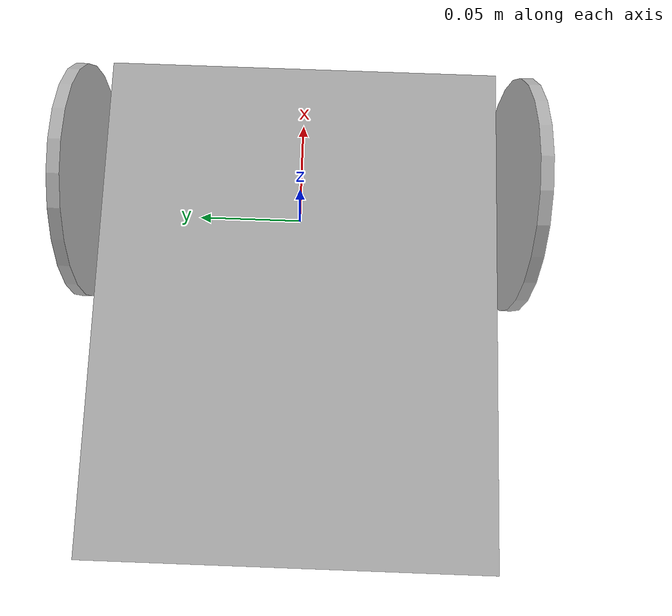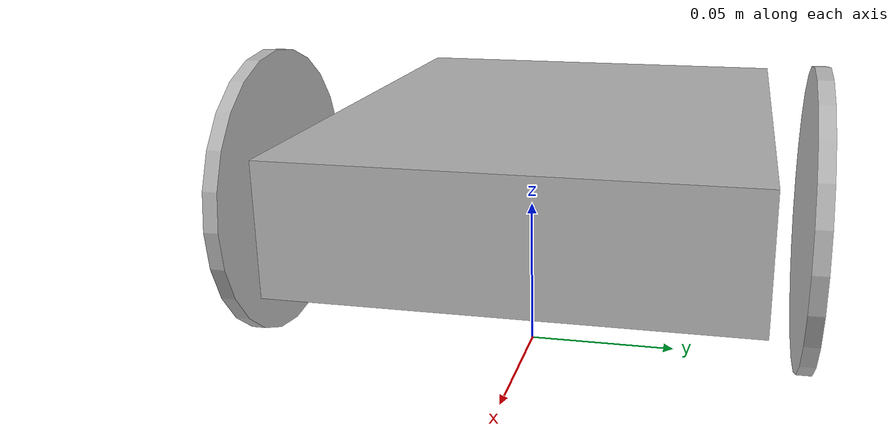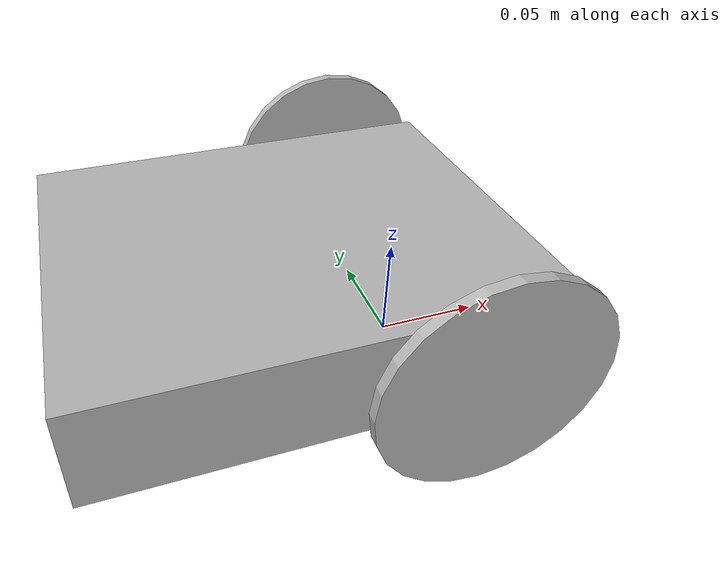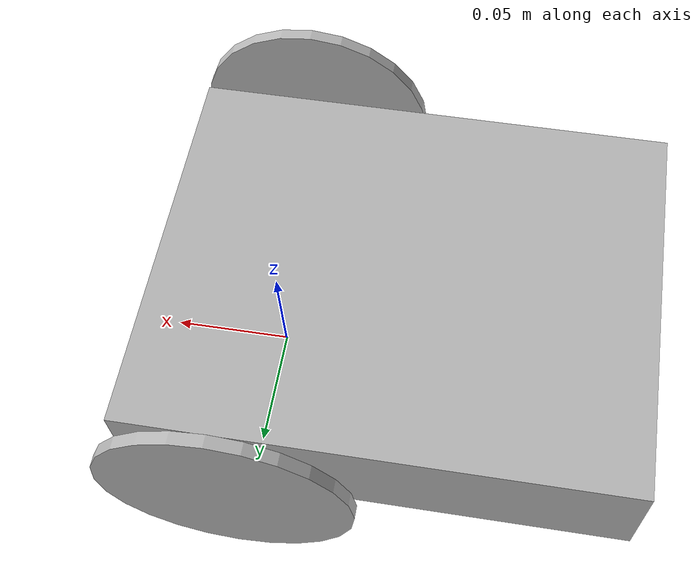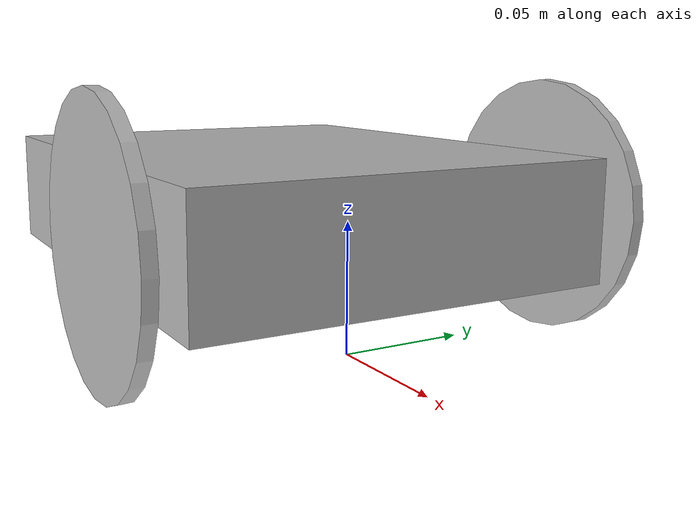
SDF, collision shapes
<?xml version='1.0'?>
<sdf version='1.4'>
    <model name='puzzlebot1' canonical_link='chassis'>

        <!--chassis-->
        <link name='chassis'>
            <pose relative_to='__model__'>0 0 0.05 0 0 0</pose>

            <inertial> <!--inertial properties of the link mass, inertia matix-->
                <mass>0.8</mass>
                <pose>-0.05 0 0 0 0 0</pose>
                <inertia>
                    <ixx>0.004</ixx>
                    <iyy>0.004</iyy>
                    <izz>0.004</izz>
                    <ixy>0</ixy>
                    <ixz>0</ixz>
                    <iyz>0</iyz>
                </inertia>
            </inertial>

            <visual name='visual'>
                <geometry>
                    <mesh>
                        <uri>./meshes/chassis1.dae</uri>
                    </mesh>
                </geometry>
            </visual>

            <collision name='collision'>
                <pose>-0.055 0 0 0 0 0</pose>
                <geometry>
                    <box>
                        <size>0.2 0.16 0.046</size>
                    </box>
                </geometry>
            </collision>

            <sensor type="camera" name="camera_sensor">
                <pose relative_to='camera_frame'>0 0 0 0 0 0</pose>
                <topic>camera</topic>
                <camera>
                    <horizontal_fov>1.047</horizontal_fov>
                    <image>
                        <width>1280</width>
                        <height>720</height>
                    </image>
                    <clip>
                        <near>0.1</near>
                        <far>100</far>
                    </clip>
                </camera>
                <always_on>1</always_on>
                <update_rate>10</update_rate>
                <visualize>false</visualize>
            </sensor>
            <sensor name='gpu_lidar' type='gpu_lidar'>"
                <pose relative_to='lidar_frame'>0 0 0 0 0 0</pose>
                <topic>lidar</topic>
                <update_rate>100</update_rate>
                <ray>
                    <scan>
                        <horizontal>
                            <samples>1146</samples>
                            <resolution>1</resolution>
                            <min_angle>-3.14</min_angle>
                            <max_angle>3.14</max_angle>
                        </horizontal>
                        <vertical>
                            <samples>1</samples>
                            <resolution>0.01</resolution>
                            <min_angle>0</min_angle>
                            <max_angle>0</max_angle>
                        </vertical>
                    </scan>
                    <range>
                        <min>0.08</min>
                        <max>10.0</max>
                        <resolution>0.01</resolution>
                    </range>
                </ray>
                <always_on>1</always_on>
                <visualize>true</visualize>
            </sensor>
        </link>

        <!--Right wheel-->
        <link name='right_wheel'>
            <pose relative_to="chassis">0.0 -0.095 0 0 0 3.1415</pose> <!--angles are in radian-->

            <inertial>
                <mass>0.05</mass>
                <inertia>
                    <ixx>0.002</ixx>
                    <iyy>0.002</iyy>
                    <izz>0.002</izz>
                    <ixy>0</ixy>
                    <ixz>0</ixz>
                    <iyz>0</iyz>
                </inertia>
            </inertial>

            <visual name='visual'>
                <geometry>
                    <mesh>
                        <uri>./meshes/wheel.dae</uri>
                    </mesh>
                </geometry>
            </visual>

            <collision name='collision'>
                <pose>0 -0.0025 0 1.5707 0 0</pose> <!--angles are in radian-->
                <geometry>
                    <cylinder>
                        <radius>0.05</radius>
                        <length>0.005</length>
                    </cylinder>
                </geometry>
                <surface>
                    <friction>
                        <ode>
                            <mu>1.0</mu>
                            <mu2>1.0</mu2>
                        </ode>
                    </friction>
                </surface>
            </collision>

        </link>

        <!--Left wheel-->
        <link name='left_wheel'>
            <pose relative_to="chassis">0.0 0.095 0 0 0 0</pose> <!--angles are in radian-->

            <inertial>
                <mass>0.05</mass>
                <inertia>
                    <ixx>0.002</ixx>
                    <iyy>0.002</iyy>
                    <izz>0.002</izz>
                    <ixy>0</ixy>
                    <ixz>0</ixz>
                    <iyz>0</iyz>
                </inertia>
            </inertial>

            <visual name='visual'>
                <geometry>
                    <mesh>
                        <uri>./meshes/wheel.dae</uri>
                    </mesh>
                </geometry>
            </visual>

            <collision name='collision'>
                <pose>0 -0.0025 0 1.5707 0 0</pose> <!--angles are in radian-->
                <geometry>
                    <cylinder>
                        <radius>0.05</radius>
                        <length>0.005</length>
                    </cylinder>
                </geometry>
                <surface>
                    <friction>
                        <ode>
                            <mu>1.0</mu>
                            <mu2>1.0</mu2>
                        </ode>
                    </friction>
                </surface>
            </collision>

        </link>

        <!--arbitrary frame-->
        <frame name="caster_frame" attached_to='chassis'>
            <pose>-0.145 0 -0.044 0 0 0</pose>
        </frame>

        <!--caster wheel-->
        <link name='caster'>
            <pose relative_to='caster_frame'/>

            <inertial>
                <mass>0.01</mass>
                <inertia>
                    <ixx>0.0000025</ixx>
                    <iyy>0.0000025</iyy>
                    <izz>0.0000025</izz>
                    <ixy>0</ixy>
                    <ixz>0</ixz>
                    <iyz>0</iyz>
                </inertia>
            </inertial>

            <visual name='visual'>
                <geometry>
                    <sphere>
                        <radius>0.006</radius>
                    </sphere>
                </geometry>
                <material>
                    <ambient>0.0 1 0.0 1</ambient>
                    <diffuse>0.0 1 0.0 1</diffuse>
                    <specular>0.0 1 0.0 1</specular>
                </material>
            </visual>

            <collision name='collision'>
                <geometry>
                    <sphere>
                        <radius>0.006</radius>
                    </sphere>
                </geometry>
            </collision>
        </link>

        <!--left wheel joint-->
        <joint name='left_wheel_joint' type='revolute'>
            <pose relative_to='left_wheel'/>
            <parent>chassis</parent>
            <child>left_wheel</child>
            <axis>
                <xyz expressed_in='__model__'>0 1 0</xyz> <!--can be descired to any frame or even arbitrary frames-->
                <limit>
                    <lower>-1.79769e+308</lower>    <!--negative infinity-->
                    <upper>1.79769e+308</upper>     <!--positive infinity-->
                    <effort>1</effort>
                </limit>
               <dynamics>
                   <friction>0.1</friction>
               </dynamics>
            </axis>
        </joint>

        <!--right wheel joint-->
        <joint name='right_wheel_joint' type='revolute'>
            <pose relative_to='right_wheel'/>
            <parent>chassis</parent>
            <child>right_wheel</child>
            <axis>
                <xyz expressed_in='__model__'>0 1 0</xyz>
                <limit>
                    <lower>-1.79769e+308</lower>    <!--negative infinity-->
                    <upper>1.79769e+308</upper>     <!--positive infinity-->
                    <effort>1</effort>
                </limit>
               <dynamics>
                   <friction>0.1</friction>
               </dynamics>
            </axis>
        </joint>

        <!--caster wheel joint--> <!--pose defult value is the child-->
        <joint name='caster_wheel' type='ball'>
            <parent>chassis</parent>
            <child>caster</child>
        </joint>

        <!-- Puzzlebot differential drive plugin -->
        <plugin
            filename="gz-sim-diff-drive-system"
            name="gz::sim::systems::DiffDrive">
            <left_joint>left_wheel_joint</left_joint>
            <right_joint>right_wheel_joint</right_joint>
            <wheel_separation>0.18</wheel_separation>
            <wheel_radius>0.05</wheel_radius>
            <odom_publish_frequency>100</odom_publish_frequency>
            <topic>cmd_vel</topic>
        </plugin>

        <frame name="camera_frame" attached_to='chassis'>
            <pose>0 0 0.06 0 0 0</pose>
        </frame>

        <frame name="lidar_frame" attached_to='chassis'>
            <pose>0 0 0.06 0 0 0</pose>
        </frame>

        <plugin
            filename="gz-sim-sensors-system"
            name="gz::sim::systems::Sensors">
            <render_engine>ogre2</render_engine>
        </plugin>

    </model>

</sdf>
